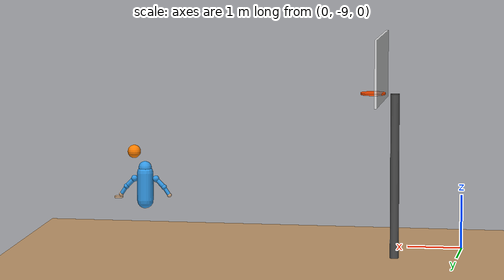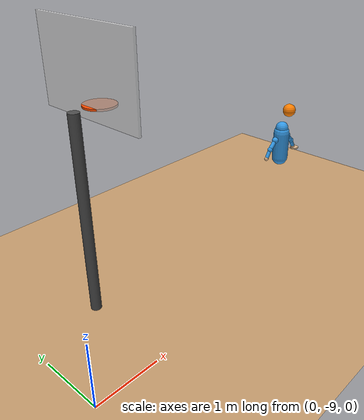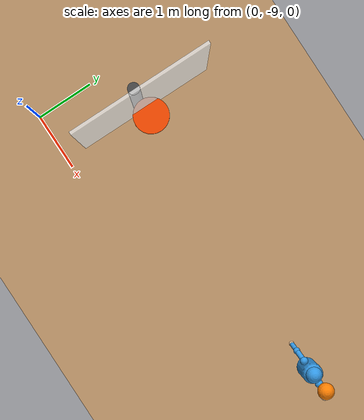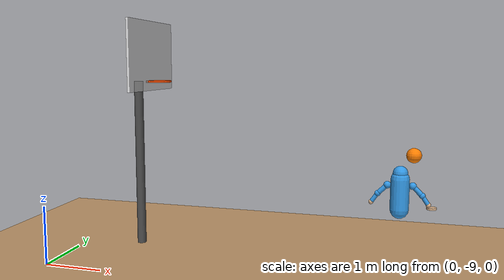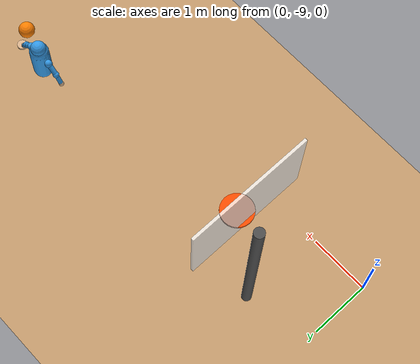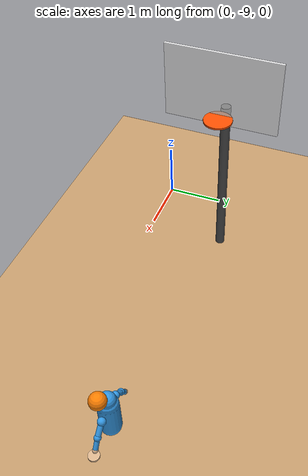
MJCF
<?xml version="1.0" encoding="utf-8"?>
<mujoco model="skeleton_basketball">
    <!--
    Basketball with Skeleton Trajectory

    This model includes key body parts from the skeleton data.
    The trajectory will be baked into keyframes from actual shot data.
    -->

    <option gravity="0 0 -9.81" timestep="0.002"/>

    <visual>
        <global offwidth="1920" offheight="1080"/>
        <quality shadowsize="4096"/>
        <headlight ambient="0.4 0.4 0.4" diffuse="0.8 0.8 0.8"/>
    </visual>

    <asset>
        <material name="court" rgba="0.76 0.60 0.42 1" specular="0.1"/>
        <material name="ball" rgba="1 0.5 0 1" specular="0.3"/>
        <material name="body" rgba="0.2 0.6 0.9 1"/>
        <material name="hand" rgba="0.85 0.7 0.55 1"/>
        <material name="rim" rgba="1 0.3 0 1" specular="0.8"/>
    </asset>

    <worldbody>
        <light pos="0 0 10" dir="0 0 -1" diffuse="1 1 1"/>

        <!-- Court -->
        <geom name="court" type="plane" size="15 15 0.1" material="court"/>

        <!-- Hoop (15 feet from typical player position) -->
        <body name="hoop" pos="1.5 -7.6 3.05">
            <geom name="rim" type="cylinder" size="0.229 0.015" material="rim"/>
            <geom name="backboard" type="box" pos="-0.15 0 0.45" size="0.02 0.91 0.61" rgba="1 1 1 0.8"/>
            <geom name="pole" type="cylinder" pos="-0.4 0 -1.5" size="0.08 1.5" rgba="0.3 0.3 0.3 1"/>
        </body>

        <!-- SKELETON: Torso (root) -->
        <body name="torso" pos="5.7 -7.6 1.0">
            <joint name="torso_x" type="slide" axis="1 0 0"/>
            <joint name="torso_y" type="slide" axis="0 1 0"/>
            <joint name="torso_z" type="slide" axis="0 0 1"/>
            <geom name="torso_geom" type="capsule" size="0.15" fromto="0 0 0 0 0 0.5" material="body"/>

            <!-- Head -->
            <body name="head" pos="0 0 0.6">
                <geom name="head_geom" type="sphere" size="0.12" material="body"/>
            </body>

            <!-- Right shoulder -->
            <body name="right_shoulder" pos="0.2 0 0.4">
                <joint name="rshoulder_x" type="slide" axis="1 0 0"/>
                <joint name="rshoulder_y" type="slide" axis="0 1 0"/>
                <joint name="rshoulder_z" type="slide" axis="0 0 1"/>
                <geom name="rshoulder_geom" type="sphere" size="0.06" material="body"/>

                <!-- Right elbow -->
                <body name="right_elbow" pos="0.15 0 -0.15">
                    <joint name="relbow_x" type="slide" axis="1 0 0"/>
                    <joint name="relbow_y" type="slide" axis="0 1 0"/>
                    <joint name="relbow_z" type="slide" axis="0 0 1"/>
                    <geom name="rupperarm" type="capsule" size="0.04" fromto="-0.15 0 0.15 0 0 0" material="body"/>
                    <geom name="relbow_geom" type="sphere" size="0.05" material="body"/>

                    <!-- Right wrist -->
                    <body name="right_wrist" pos="0.1 0 -0.15">
                        <joint name="rwrist_x" type="slide" axis="1 0 0"/>
                        <joint name="rwrist_y" type="slide" axis="0 1 0"/>
                        <joint name="rwrist_z" type="slide" axis="0 0 1"/>
                        <geom name="rforearm" type="capsule" size="0.035" fromto="-0.1 0 0.15 0 0 0" material="body"/>
                        <geom name="rwrist_geom" type="sphere" size="0.04" material="hand"/>

                        <!-- Right hand/fingers -->
                        <body name="right_hand" pos="0.05 0 -0.05">
                            <joint name="rhand_x" type="slide" axis="1 0 0"/>
                            <joint name="rhand_y" type="slide" axis="0 1 0"/>
                            <joint name="rhand_z" type="slide" axis="0 0 1"/>
                            <geom name="rhand_geom" type="cylinder" size="0.08 0.015" material="hand"/>
                        </body>
                    </body>
                </body>
            </body>

            <!-- Left shoulder (guide hand) -->
            <body name="left_shoulder" pos="-0.2 0 0.4">
                <joint name="lshoulder_x" type="slide" axis="1 0 0"/>
                <joint name="lshoulder_y" type="slide" axis="0 1 0"/>
                <joint name="lshoulder_z" type="slide" axis="0 0 1"/>
                <geom name="lshoulder_geom" type="sphere" size="0.06" material="body"/>

                <body name="left_elbow" pos="-0.15 0 -0.15">
                    <joint name="lelbow_x" type="slide" axis="1 0 0"/>
                    <joint name="lelbow_y" type="slide" axis="0 1 0"/>
                    <joint name="lelbow_z" type="slide" axis="0 0 1"/>
                    <geom name="lupperarm" type="capsule" size="0.04" fromto="0.15 0 0.15 0 0 0" material="body"/>
                    <geom name="lelbow_geom" type="sphere" size="0.05" material="body"/>

                    <body name="left_wrist" pos="-0.1 0 -0.15">
                        <joint name="lwrist_x" type="slide" axis="1 0 0"/>
                        <joint name="lwrist_y" type="slide" axis="0 1 0"/>
                        <joint name="lwrist_z" type="slide" axis="0 0 1"/>
                        <geom name="lforearm" type="capsule" size="0.035" fromto="0.1 0 0.15 0 0 0" material="body"/>
                        <geom name="lwrist_geom" type="sphere" size="0.04" material="hand"/>
                    </body>
                </body>
            </body>
        </body>

        <!-- Basketball (free body) -->
        <body name="ball" pos="5.9 -7.6 1.9">
            <freejoint name="ball_free"/>
            <geom name="basketball" type="sphere" size="0.12" material="ball" mass="0.625"/>
        </body>

    </worldbody>

</mujoco>
